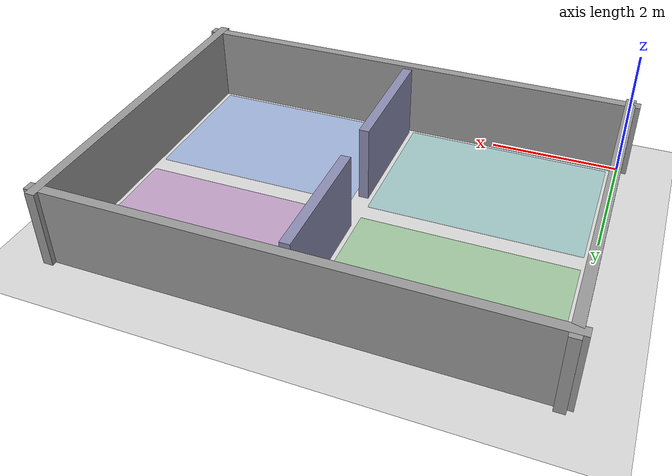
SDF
<?xml version="1.0" ?>
X
     0m              7m

  Destination coords fed into main.py DESTINATIONS:
    kitchen:    x=1.5, y=0.8
    classroom:  x=1.5, y=4.2
    bedroom:    x=5.5, y=4.2
    bathroom:   x=5.5, y=0.8
-->
<sdf version="1.9">
  <world name="saarthi_arena">

    <!-- ── Physics ──────────────────────────────────────────────────────── -->
    <physics name="1ms" type="ignored">
      <max_step_size>0.001</max_step_size>
      <real_time_factor>1.0</real_time_factor>
    </physics>

    <!-- ── Required system plugins ──────────────────────────────────────── -->
    <plugin filename="gz-sim-physics-system"
            name="gz::sim::systems::Physics"/>
    <plugin filename="gz-sim-user-commands-system"
            name="gz::sim::systems::UserCommands"/>
    <plugin filename="gz-sim-scene-broadcaster-system"
            name="gz::sim::systems::SceneBroadcaster"/>
    <plugin filename="gz-sim-sensors-system"
            name="gz::sim::systems::Sensors">
      <render_engine>ogre2</render_engine>
    </plugin>
    <plugin filename="gz-sim-contact-system"
            name="gz::sim::systems::Contact"/>

    <!-- ── Lighting ─────────────────────────────────────────────────────── -->
    <light name="sun" type="directional">
      <cast_shadows>true</cast_shadows>
      <pose>0 0 10 0 0 0</pose>
      <diffuse>0.9 0.9 0.9 1</diffuse>
      <specular>0.3 0.3 0.3 1</specular>
      <attenuation>
        <range>1000</range><constant>0.9</constant>
        <linear>0.01</linear><quadratic>0.001</quadratic>
      </attenuation>
      <direction>-0.5 0.1 -0.9</direction>
    </light>

    <!-- ── Ground ───────────────────────────────────────────────────────── -->
    <model name="ground_plane">
      <static>true</static>
      <link name="link">
        <collision name="col">
          <geometry><plane><normal>0 0 1</normal></plane></geometry>
          <surface><friction><ode><mu>1.0</mu><mu2>1.0</mu2></ode></friction></surface>
        </collision>
        <visual name="vis">
          <geometry><plane><normal>0 0 1</normal><size>20 20</size></plane></geometry>
          <material><ambient>0.85 0.85 0.85 1</ambient><diffuse>0.85 0.85 0.85 1</diffuse></material>
        </visual>
      </link>
    </model>

    <!-- South wall  y=0 -->
    <model name="wall_south">
      <static>true</static><pose>3.5 0 0.6 0 0 0</pose>
      <link name="link">
        <collision name="col"><geometry><box><size>7.3 0.15 1.2</size></box></geometry></collision>
        <visual name="vis">
          <geometry><box><size>7.3 0.15 1.2</size></box></geometry>
          <material><ambient>0.6 0.6 0.6 1</ambient></material>
        </visual>
      </link>
    </model>

    <!-- North wall  y=5 -->
    <model name="wall_north">
      <static>true</static><pose>3.5 5 0.6 0 0 0</pose>
      <link name="link">
        <collision name="col"><geometry><box><size>7.3 0.15 1.2</size></box></geometry></collision>
        <visual name="vis">
          <geometry><box><size>7.3 0.15 1.2</size></box></geometry>
          <material><ambient>0.6 0.6 0.6 1</ambient></material>
        </visual>
      </link>
    </model>

    <!-- West wall  x=0 -->
    <model name="wall_west">
      <static>true</static><pose>0 2.5 0.6 0 0 0</pose>
      <link name="link">
        <collision name="col"><geometry><box><size>0.15 5.3 1.2</size></box></geometry></collision>
        <visual name="vis">
          <geometry><box><size>0.15 5.3 1.2</size></box></geometry>
          <material><ambient>0.6 0.6 0.6 1</ambient></material>
        </visual>
      </link>
    </model>

    <!-- East wall  x=7 -->
    <model name="wall_east">
      <static>true</static><pose>7 2.5 0.6 0 0 0</pose>
      <link name="link">
        <collision name="col"><geometry><box><size>0.15 5.3 1.2</size></box></geometry></collision>
        <visual name="vis">
          <geometry><box><size>0.15 5.3 1.2</size></box></geometry>
          <material><ambient>0.6 0.6 0.6 1</ambient></material>
        </visual>
      </link>
    </model>

    <!-- ── Internal divider: vertical wall at x=3.5, with 1.2 m doorway gap ── -->
    <!-- Lower segment: y=[0.15, 2.15] -->
    <model name="divider_v_lower">
      <static>true</static><pose>3.5 1.15 0.6 0 0 0</pose>
      <link name="link">
        <collision name="col"><geometry><box><size>0.15 2.0 1.2</size></box></geometry></collision>
        <visual name="vis">
          <geometry><box><size>0.15 2.0 1.2</size></box></geometry>
          <material><ambient>0.55 0.55 0.7 1</ambient></material>
        </visual>
      </link>
    </model>
    <!-- Upper segment: y=[2.85, 4.85] -->
    <model name="divider_v_upper">
      <static>true</static><pose>3.5 3.85 0.6 0 0 0</pose>
      <link name="link">
        <collision name="col"><geometry><box><size>0.15 2.0 1.2</size></box></geometry></collision>
        <visual name="vis">
          <geometry><box><size>0.15 2.0 1.2</size></box></geometry>
          <material><ambient>0.55 0.55 0.7 1</ambient></material>
        </visual>
      </link>
    </model>

    <!-- ── Zone markers (low flat boxes on the floor, coloured) ──────────── -->
    <!-- Kitchen: cyan, x=[0.15,3.35] y=[0.15,2.35] -->
    <model name="zone_kitchen">
      <static>true</static><pose>1.75 1.25 0.01 0 0 0</pose>
      <link name="link">
        <visual name="vis">
          <geometry><box><size>3.2 2.2 0.02</size></box></geometry>
          <material><ambient>0.0 0.6 0.6 0.25</ambient><diffuse>0.0 0.6 0.6 0.25</diffuse></material>
        </visual>
      </link>
    </model>

    <!-- Classroom: green, x=[0.15,3.35] y=[2.65,4.85] -->
    <model name="zone_classroom">
      <static>true</static><pose>1.75 3.75 0.01 0 0 0</pose>
      <link name="link">
        <visual name="vis">
          <geometry><box><size>3.2 2.2 0.02</size></box></geometry>
          <material><ambient>0.0 0.6 0.0 0.25</ambient><diffuse>0.0 0.6 0.0 0.25</diffuse></material>
        </visual>
      </link>
    </model>

    <!-- Bedroom: purple, x=[3.65,6.85] y=[2.65,4.85] -->
    <model name="zone_bedroom">
      <static>true</static><pose>5.25 3.75 0.01 0 0 0</pose>
      <link name="link">
        <visual name="vis">
          <geometry><box><size>3.2 2.2 0.02</size></box></geometry>
          <material><ambient>0.5 0.0 0.6 0.25</ambient><diffuse>0.5 0.0 0.6 0.25</diffuse></material>
        </visual>
      </link>
    </model>

    <!-- Bathroom: blue, x=[3.65,6.85] y=[0.15,2.35] -->
    <model name="zone_bathroom">
      <static>true</static><pose>5.25 1.25 0.01 0 0 0</pose>
      <link name="link">
        <visual name="vis">
          <geometry><box><size>3.2 2.2 0.02</size></box></geometry>
          <material><ambient>0.0 0.3 0.9 0.25</ambient><diffuse>0.0 0.3 0.9 0.25</diffuse></material>
        </visual>
      </link>
    </model>

  </world>
</sdf>
